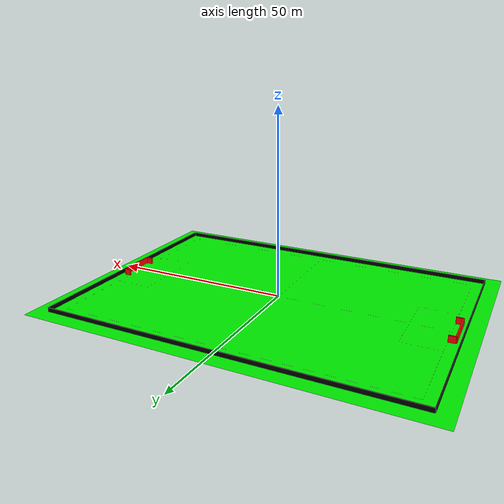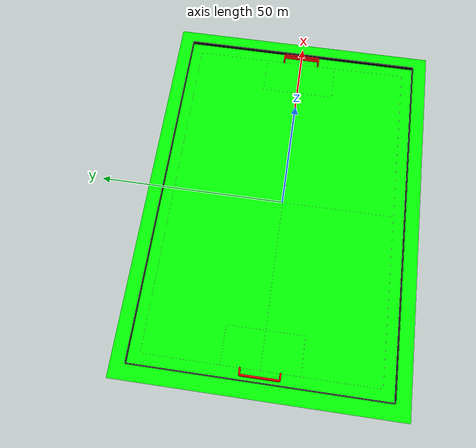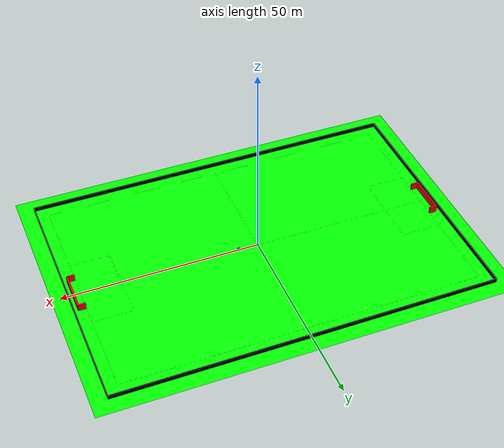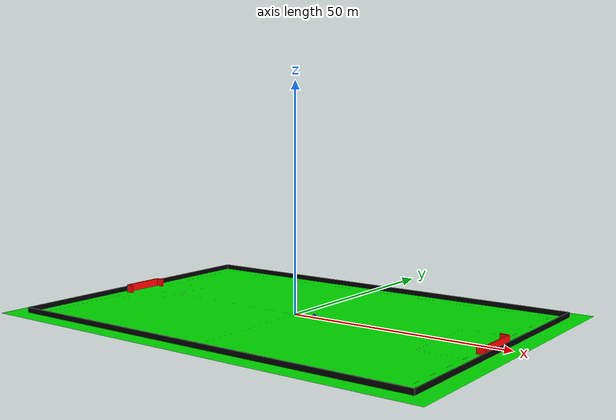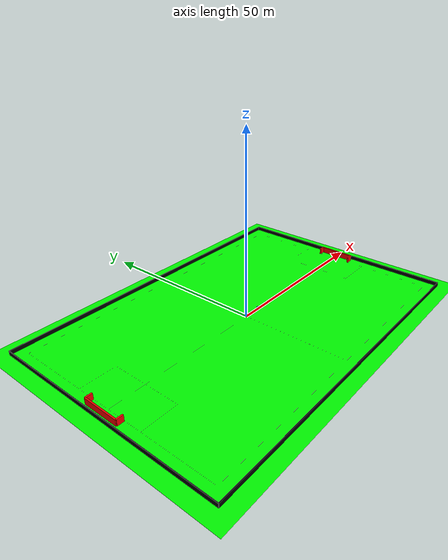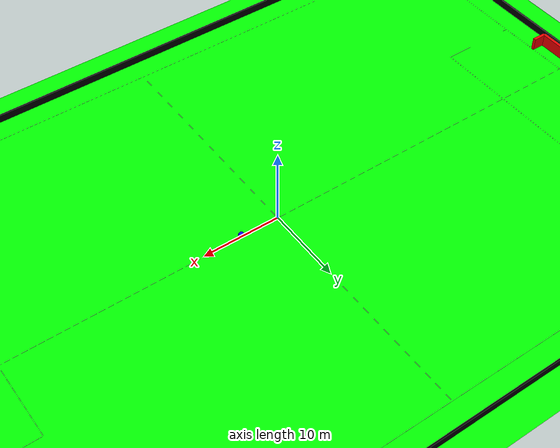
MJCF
<mujoco>
    <worldbody>
        <!-- Stadium -->
        <geom name="stadium" type="plane" size="52 37 0.1" pos="0 0 0" rgba="0 1 0 1" />

        <!-- Boundaries -->
        <body>
            <geom name="boundary_1" type="box" size="48 0.1 1" pos="0 33 0" rgba="0 0 0 1" />
            <geom name="boundary_2" type="box" size="48 0.1 1" pos="0 -33 0" rgba="0 0 0 1" />
            <geom name="boundary_3" type="box" size="33 0.1 1" pos="48 0 0" rgba="0 0 0 1" euler="0 0 90" />
            <geom name="boundary_4" type="box" size="33 0.1 1" pos="-48 0 0" rgba="0 0 0 1" euler="0 0 90" />
        </body>

        <!-- Goal posts -->
        <!-- Goal post 1 -->
        <body>
            <geom type="box" size="5 0.2 1.6" pos="46.8 0 0" rgba="1 0 0 1" euler="0 0 90" />
            <geom type="box" size="0.9 0.2 1.6" pos="45.9 5 0" rgba="1 0 0 1" />
            <geom type="box" size="0.9 0.2 1.6" pos="45.9 -5 0" rgba="1 0 0 1" />
        </body>

        <!-- Goal post 2 -->
        <body>
            <geom type="box" size="5 0.2 1.6" pos="-46.8 0 0" rgba="1 0 0 1" euler="0 0 90" />
            <geom type="box" size="0.9 0.2 1.6" pos="-45.9 5 0" rgba="1 0 0 1" />
            <geom type="box" size="0.9 0.2 1.6" pos="-45.9 -5 0" rgba="1 0 0 1" />
        </body>

        <!-- Field Markings -->
        <!-- Field Lines -->
        <body>
            <!-- Touch lines -->
            <geom type="box" size="0.001 45 0.01" pos="0 30 0" rgba="255 255 255 1" euler="90 0 90"/>
            <geom type="box" size="0.001 45 0.01" pos="0 -30 0" rgba="255 255 255 1" euler="90 0 90"/>

            <!-- Goal lines -->
            <geom type="box" size="0.001 30 0.01" pos="-45 0 0" rgba="255 255 255 1" euler="0 90 0"/>
            <geom type="box" size="0.001 30 0.01" pos="45 0 0" rgba="255 255 255 1" euler="0 90 0"/>
        </body>

        <!-- Halfway Lines -->
        <body>
            <!-- Halfway Line -->
            <geom type="box" size="0.001 30 0.01" pos="0 0 0" rgba="255 255 255 1" euler="0 90 0"/>

            <!-- Goal-to-Goal Line -->
            <geom type="box" size="0.001 45 0.01" pos="0 0 0" rgba="255 255 255 1" euler="90 0 90"/>
        </body>

        <!-- Defence area -->
        <body>
            <geom type="box" size="0.001 5 0.01" pos="40 10 0" rgba="255 255 255 1" euler="90 0 90"/>
            <geom type="box" size="0.001 5 0.01" pos="40 -10 0" rgba="255 255 255 1" euler="90 0 90"/>
            <geom type="box" size="0.001 10 0.01" pos="35 0 0" rgba="255 255 255 1" euler="0 90 0"/>
        </body>

        <body>
            <geom type="box" size="0.001 5 0.01" pos="-40 10 0" rgba="255 255 255 1" euler="90 0 90"/>
            <geom type="box" size="0.001 5 0.01" pos="-40 -10 0" rgba="255 255 255 1" euler="90 0 90"/>
            <geom type="box" size="0.001 10 0.01" pos="-35 0 0" rgba="255 255 255 1" euler="0 90 0"/>
        </body>

        <!-- Ball -->
        <body pos="0 0 0.215">
            <geom type="sphere" size="0.215"  rgba="1 0.647 0 1" />
            <joint type="free" />
        </body>

        <!-- Sphero 1 -->
        <body pos="5 0 0.365">
            <geom type="sphere" size="0.365"  rgba="0 0 1 1" />
            <joint type="slide" axis="1 0 0" />
			<joint type="hinge" axis="0 0 -1" />
        </body>

    </worldbody>
</mujoco>
